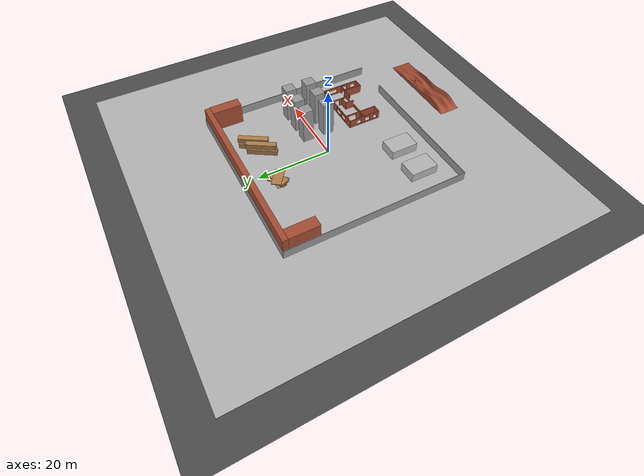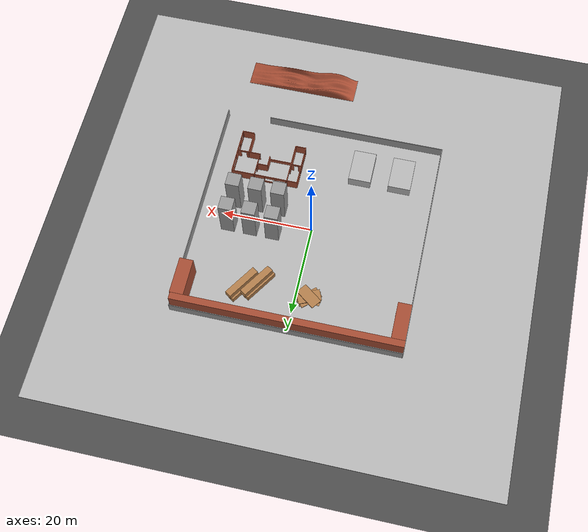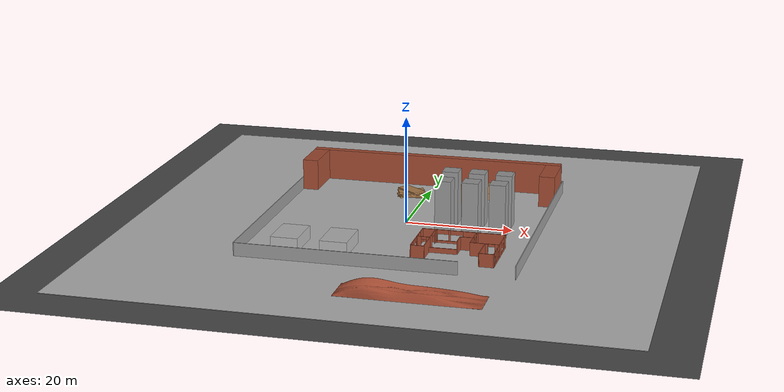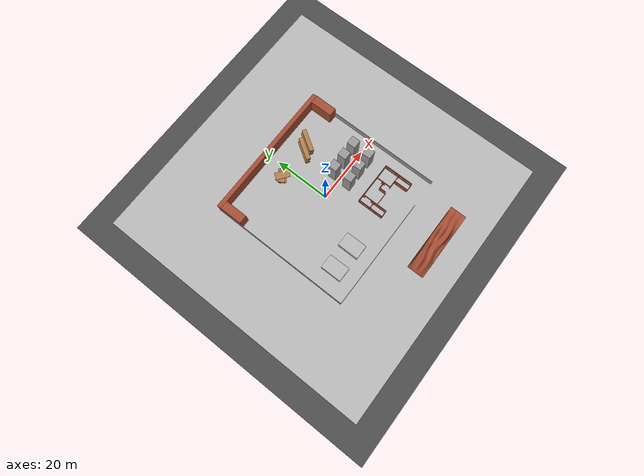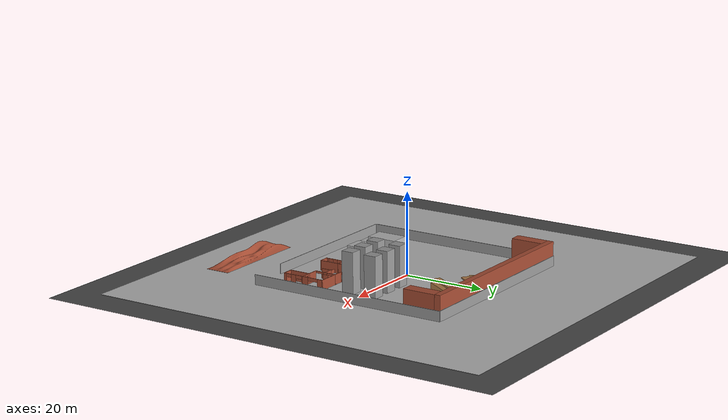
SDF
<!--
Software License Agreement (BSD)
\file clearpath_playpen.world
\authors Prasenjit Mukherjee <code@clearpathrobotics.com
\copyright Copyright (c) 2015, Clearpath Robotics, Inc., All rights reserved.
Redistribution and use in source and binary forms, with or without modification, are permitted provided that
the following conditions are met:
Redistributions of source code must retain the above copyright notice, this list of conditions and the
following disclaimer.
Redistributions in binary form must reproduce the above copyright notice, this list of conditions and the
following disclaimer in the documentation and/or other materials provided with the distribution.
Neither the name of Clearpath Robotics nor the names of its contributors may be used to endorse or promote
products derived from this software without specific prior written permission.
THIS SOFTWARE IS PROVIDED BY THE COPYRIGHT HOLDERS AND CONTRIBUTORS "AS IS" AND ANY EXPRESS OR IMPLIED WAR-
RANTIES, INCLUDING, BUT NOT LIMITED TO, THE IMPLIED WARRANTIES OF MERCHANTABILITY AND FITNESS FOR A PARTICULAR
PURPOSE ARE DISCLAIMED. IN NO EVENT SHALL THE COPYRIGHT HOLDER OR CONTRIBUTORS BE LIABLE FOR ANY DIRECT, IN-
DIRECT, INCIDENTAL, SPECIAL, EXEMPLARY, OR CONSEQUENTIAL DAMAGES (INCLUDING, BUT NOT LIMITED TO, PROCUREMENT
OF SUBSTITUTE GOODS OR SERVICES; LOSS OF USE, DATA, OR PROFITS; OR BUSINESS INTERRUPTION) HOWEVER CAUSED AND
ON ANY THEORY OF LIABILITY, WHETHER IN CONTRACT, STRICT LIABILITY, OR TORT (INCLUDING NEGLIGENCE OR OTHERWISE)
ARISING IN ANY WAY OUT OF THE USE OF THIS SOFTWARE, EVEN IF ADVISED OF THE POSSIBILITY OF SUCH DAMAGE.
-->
<sdf version="1.4">
 <world name="default">
  <light name="sun" type="directional">
   <pose>0 0 10 0 -0 0</pose>
   <diffuse>0.8 0.8 0.8 1</diffuse>
   <specular>0.2 0.2 0.2 1</specular>
   <attenuation>
    <range>1000</range>
    <constant>0.9</constant>
    <linear>0.01</linear>
    <quadratic>0.001</quadratic>
   </attenuation>
   <direction>-0.5 0.1 -0.9</direction>
  </light>
  <model name="ground_plane">
   <static>1</static>
   <link name="link">
    <collision name="collision">
     <geometry><plane><normal>0 0 1</normal><size>100 100</size></plane></geometry>
     <surface><friction><ode><mu>100</mu><mu2>50</mu2></ode></friction></surface>
    </collision>
    <visual name="visual">
     <cast_shadows>0</cast_shadows>
     <geometry><plane><normal>0 0 1</normal><size>100 100</size></plane></geometry>
     <material>
      <script>
       <uri>model://asphalt_plane/materials/scripts</uri>
       <uri>model://asphalt_plane/materials/textures</uri>
       <name>vrc/asphalt</name>
      </script>
     </material>
    </visual>
    <velocity_decay><linear>0</linear><angular>0</angular></velocity_decay>
   </link>
  </model>
  <physics type="ode">
   <max_step_size>0.01</max_step_size>
   <real_time_factor>1</real_time_factor>
   <real_time_update_rate>100</real_time_update_rate>
   <gravity>0 0 -9.8</gravity>
  </physics>
  <scene><ambient>0.4 0.4 0.4 1</ambient><background>0.7 0.7 0.7 1</background><shadows>1</shadows></scene>
  <model name="asphalt_plane">
   <static>1</static>
   <link name="link">
    <collision name="collision"><geometry><box><size>100 100 0.1</size></box></geometry></collision>
    <visual name="visual">
     <cast_shadows>0</cast_shadows>
     <geometry><box><size>100 100 0.1</size></box></geometry>
     <material>
      <script><uri>file://media/materials/scripts/gazebo.material</uri><name>Gazebo/Sand_Floor</name></script>
     </material>
    </visual>
    <velocity_decay><linear>0</linear><angular>0</angular></velocity_decay>
   </link>
   <pose>0.076733 -0.110379 0 0 -0 0</pose>
  </model>
  <model name="Wall_1">
   <include><static>true</static><uri>model://Wall_2</uri><pose>1.5 -30.5 0 0 0 0</pose></include>
  </model>
  <model name="Wall_2">
   <include><static>true</static><uri>model://Wall</uri><pose>6.5 19.5 0 0 0 0</pose></include>
  </model>
  <model name="Wall_3">
   <include><static>true</static><uri>model://Wall</uri><pose>30.5 6 0 0 0 1.57</pose></include>
  </model>
  <model name="Wall_4">
   <include><static>true</static><uri>model://Wall</uri><pose>-19.5 6 0 0 0 1.57</pose></include>
  </model>
  <model name="inside_house">
   <include><static>true</static><uri>model://construction_house</uri><pose>13 -15 0 0 0 0</pose></include>
  </model>
  <model name="Wood_1">
   <include><static>true</static><uri>model://Wood</uri><pose>-3 16 0 1.57 0 0</pose></include>
  </model>
  <model name="Wood_2">
   <include><static>true</static><uri>model://Wood</uri><pose>-3 16 0.25 1.57 0 0.5</pose></include>
  </model>
  <model name="Wood_3">
   <include><static>true</static><uri>model://Wood</uri><pose>-3 16 0.5 1.57 0 0.75</pose></include>
  </model>
  <model name="Wood_4">
   <include><static>true</static><uri>model://Wood</uri><pose>-3 16 0.75 1.57 0 0.2</pose></include>
  </model>
  <model name="Wood_5">
   <include><static>true</static><uri>model://Wood</uri><pose>-3 16 1 1.57 0 0.4</pose></include>
  </model>
  <model name="Wood_6">
   <include><static>true</static><uri>model://Wood</uri><pose>-3 16 1.25 1.57 0 2.5</pose></include>
  </model>
  <model name="Stone_1">
   <include><static>true</static><uri>model://Stone</uri><pose>-17 -17 1.277294 0 0 0</pose></include>
  </model>
  <model name="Stone_2">
   <include><static>true</static><uri>model://Stone</uri><pose>-8 -17 1.277294 0 0 0</pose></include>
  </model>
  <model name="long_wood_1">
   <include><static>true</static><uri>model://long_wood</uri><pose>8 15.5 0.75 0 0 1</pose></include>
  </model>
  <model name="long_wood_2">
   <include><static>true</static><uri>model://long_wood</uri><pose>11 16.5 0.75 0 0 1</pose></include>
  </model>
  <model name="long_wood_4">
   <include><static>true</static><uri>model://long_wood</uri><pose>8.5 15.5 2.25 0 0 1</pose></include>
  </model>
  <model name="long_wood_5">
   <include><static>true</static><uri>model://long_wood</uri><pose>11.5 16.5 2.25 0 0 1</pose></include>
  </model>
  <model name="storage_wall">
   <include><static>true</static><uri>model://storage_wall</uri><pose>0.12 23.95 3 0 0 0</pose></include>
  </model>
  <model name="storage_wall_2">
   <include><static>true</static><uri>model://storage_wall_2</uri><pose>-23.2049 19.2 3 0 0 1.57</pose></include>
  </model>
  <model name="storage_wall_3">
   <include><static>true</static><uri>model://storage_wall_2</uri><pose>23.6455 19.2 3 0 0 1.57</pose></include>
  </model>
  <model name="pillar_1">
   <include><static>true</static><uri>model://pillar</uri><pose>8 2.5 5 0 0 0</pose></include>
  </model>
  <model name="pillar_2">
   <include><static>true</static><uri>model://pillar</uri><pose>13 2.5 5 0 0 0</pose></include>
  </model>
  <model name="pillar_3">
   <include><static>true</static><uri>model://pillar</uri><pose>18 2.5 5 0 0 0</pose></include>
  </model>
  <model name="pillar_4">
   <include><static>true</static><uri>model://pillar</uri><pose>8 -3.5 5 0 0 0</pose></include>
  </model>
  <model name="pillar_5">
   <include><static>true</static><uri>model://pillar</uri><pose>13 -3.5 5 0 0 0</pose></include>
  </model>
  <model name="pillar_6">
   <include><static>true</static><uri>model://pillar</uri><pose>18 -3.5 5 0 0 0</pose></include>
  </model>
  <model name="test_01">
   <include><static>true</static><uri>model://test</uri><pose>22.7 -35 0.5 0 0 0</pose></include>
  </model>
 </world>
</sdf>

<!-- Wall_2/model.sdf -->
<sdf version='1.6'>
  <model name='Wall_2'>
<link name='Wall_84'>
      <pose frame=''>-6.2 5.275 0 0 -0 3.14159</pose>
      <self_collide>0</self_collide>
      <kinematic>0</kinematic>
      <visual name='Wall_84_Visual'>
        <pose frame=''>0 0 1.25 0 -0 0</pose>
        <geometry>
          <box>
            <size>40 0.15 2.5</size>
          </box>
        </geometry>
        <material>
          <script>
              <uri>model://grey_wall/materials/scripts</uri>
            <uri>model://grey_wall/materials/textures</uri>
            <name>vrc/grey_wall</name>
          </script>
          <ambient>1 1 1 1</ambient>
          <diffuse>1 1 1 1</diffuse>
          <specular>0.2 0.2 0.2 1</specular>
          <emissive>0 0 0 1</emissive>
        </material>
        <cast_shadows>1</cast_shadows>
        <transparency>0</transparency>
      </visual>
      <collision name='Wall_84_Collision'>
        <laser_retro>0</laser_retro>
        <max_contacts>10</max_contacts>
        <pose frame=''>0 0 1.25 0 -0 0</pose>
        <geometry>
          <box>
            <size>40 0.15 2.5</size>
          </box>
        </geometry>
        <surface>
          <friction>
            <ode>
              <mu>1</mu>
              <mu2>1</mu2>
              <fdir1>0 0 0</fdir1>
              <slip1>0</slip1>
              <slip2>0</slip2>
            </ode>
            <torsional>
              <coefficient>1</coefficient>
              <patch_radius>0</patch_radius>
              <surface_radius>0</surface_radius>
              <use_patch_radius>1</use_patch_radius>
              <ode>
                <slip>0</slip>
              </ode>
            </torsional>
          </friction>
          <bounce>
            <restitution_coefficient>0</restitution_coefficient>
            <threshold>1e+06</threshold>
          </bounce>
          <contact>
            <collide_without_contact>0</collide_without_contact>
            <collide_without_contact_bitmask>1</collide_without_contact_bitmask>
            <collide_bitmask>1</collide_bitmask>
            <ode>
              <soft_cfm>0</soft_cfm>
              <soft_erp>0.2</soft_erp>
              <kp>1e+13</kp>
              <kd>1</kd>
              <max_vel>0.01</max_vel>
              <min_depth>0</min_depth>
            </ode>
            <bullet>
              <split_impulse>1</split_impulse>
              <split_impulse_penetration_threshold>-0.01</split_impulse_penetration_threshold>
              <soft_cfm>0</soft_cfm>
              <soft_erp>0.2</soft_erp>
              <kp>1e+13</kp>
              <kd>1</kd>
            </bullet>
          </contact>
        </surface>
      </collision>
    </link>
</model>
</sdf>

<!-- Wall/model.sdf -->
<sdf version='1.6'>
  <model name='Wall'>
<link name='Wall_84'>
      <pose frame=''>-6.2 5.275 0 0 -0 3.14159</pose>
      <self_collide>0</self_collide>
      <kinematic>0</kinematic>
      <visual name='Wall_84_Visual'>
        <pose frame=''>0 0 1.25 0 -0 0</pose>
        <geometry>
          <box>
            <size>50 0.15 2.5</size>
          </box>
        </geometry>
        <material>
          <script>
              <uri>model://grey_wall/materials/scripts</uri>
            <uri>model://grey_wall/materials/textures</uri>
            <name>vrc/grey_wall</name>
          </script>
          <ambient>1 1 1 1</ambient>
          <diffuse>1 1 1 1</diffuse>
          <specular>0.2 0.2 0.2 1</specular>
          <emissive>0 0 0 1</emissive>
        </material>
        <cast_shadows>1</cast_shadows>
        <transparency>0</transparency>
      </visual>
      <collision name='Wall_84_Collision'>
        <laser_retro>0</laser_retro>
        <max_contacts>10</max_contacts>
        <pose frame=''>0 0 1.25 0 -0 0</pose>
        <geometry>
          <box>
            <size>50 0.15 2.5</size>
          </box>
        </geometry>
        <surface>
          <friction>
            <ode>
              <mu>1</mu>
              <mu2>1</mu2>
              <fdir1>0 0 0</fdir1>
              <slip1>0</slip1>
              <slip2>0</slip2>
            </ode>
            <torsional>
              <coefficient>1</coefficient>
              <patch_radius>0</patch_radius>
              <surface_radius>0</surface_radius>
              <use_patch_radius>1</use_patch_radius>
              <ode>
                <slip>0</slip>
              </ode>
            </torsional>
          </friction>
          <bounce>
            <restitution_coefficient>0</restitution_coefficient>
            <threshold>1e+06</threshold>
          </bounce>
          <contact>
            <collide_without_contact>0</collide_without_contact>
            <collide_without_contact_bitmask>1</collide_without_contact_bitmask>
            <collide_bitmask>1</collide_bitmask>
            <ode>
              <soft_cfm>0</soft_cfm>
              <soft_erp>0.2</soft_erp>
              <kp>1e+13</kp>
              <kd>1</kd>
              <max_vel>0.01</max_vel>
              <min_depth>0</min_depth>
            </ode>
            <bullet>
              <split_impulse>1</split_impulse>
              <split_impulse_penetration_threshold>-0.01</split_impulse_penetration_threshold>
              <soft_cfm>0</soft_cfm>
              <soft_erp>0.2</soft_erp>
              <kp>1e+13</kp>
              <kd>1</kd>
            </bullet>
          </contact>
        </surface>
      </collision>
    </link>
</model>
</sdf>

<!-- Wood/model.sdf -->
<sdf version='1.6'>
  <model name='Wood'>
<link name='Wall_84'>
      <self_collide>0</self_collide>
      <kinematic>0</kinematic>
      <visual name='Wall_84_Visual'>
        <geometry>
          <box>
            <size>5 0.25 2.5</size>
          </box>
        </geometry>
        <material>
          <script>

            <uri>file://media/materials/scripts/gazebo.material</uri>
            <name>Gazebo/Wood</name>

          </script>
          <ambient>1 1 1 1</ambient>
          <diffuse>1 1 1 1</diffuse>
          <specular>0.2 0.2 0.2 1</specular>
          <emissive>0 0 0 1</emissive>
        </material>
        <cast_shadows>1</cast_shadows>
        <transparency>0</transparency>
      </visual>
      <collision name='Wall_84_Collision'>
        <laser_retro>0</laser_retro>
        <max_contacts>10</max_contacts>
        <geometry>
          <box>
            <size>5 0.25 2.5</size>
          </box>
        </geometry>
        <surface>
          <friction>
            <ode>
              <mu>1</mu>
              <mu2>1</mu2>
              <fdir1>0 0 0</fdir1>
              <slip1>0</slip1>
              <slip2>0</slip2>
            </ode>
            <torsional>
              <coefficient>1</coefficient>
              <patch_radius>0</patch_radius>
              <surface_radius>0</surface_radius>
              <use_patch_radius>1</use_patch_radius>
              <ode>
                <slip>0</slip>
              </ode>
            </torsional>
          </friction>
          <bounce>
            <restitution_coefficient>0</restitution_coefficient>
            <threshold>1e+06</threshold>
          </bounce>
          <contact>
            <collide_without_contact>0</collide_without_contact>
            <collide_without_contact_bitmask>1</collide_without_contact_bitmask>
            <collide_bitmask>1</collide_bitmask>
            <ode>
              <soft_cfm>0</soft_cfm>
              <soft_erp>0.2</soft_erp>
              <kp>1e+13</kp>
              <kd>1</kd>
              <max_vel>0.01</max_vel>
              <min_depth>0</min_depth>
            </ode>
            <bullet>
              <split_impulse>1</split_impulse>
              <split_impulse_penetration_threshold>-0.01</split_impulse_penetration_threshold>
              <soft_cfm>0</soft_cfm>
              <soft_erp>0.2</soft_erp>
              <kp>1e+13</kp>
              <kd>1</kd>
            </bullet>
          </contact>
        </surface>
      </collision>
    </link>
</model>
</sdf>

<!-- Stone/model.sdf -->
<sdf version='1.6'>
  <model name='Stone'>
<link name='Wall_84'>
      <self_collide>0</self_collide>
      <kinematic>0</kinematic>
      <visual name='Wall_84_Visual'>
        <geometry>
          <box>
            <size>5 7.5 2.5</size>
          </box>
        </geometry>
        <material>
          <script>
              <uri>file://media/materials/scripts/gazebo.material</uri>
              <name>Gazebo/Sand_Floor</name>
          </script>

        </material>
        <cast_shadows>1</cast_shadows>
        <transparency>0</transparency>
      </visual>
      <collision name='Wall_84_Collision'>
        <laser_retro>0</laser_retro>
        <max_contacts>10</max_contacts>
        <geometry>
          <box>
            <size>5 7.5 2.5</size>
          </box>
        </geometry>
        <surface>
          <friction>
            <ode>
              <mu>1</mu>
              <mu2>1</mu2>
              <fdir1>0 0 0</fdir1>
              <slip1>0</slip1>
              <slip2>0</slip2>
            </ode>
            <torsional>
              <coefficient>1</coefficient>
              <patch_radius>0</patch_radius>
              <surface_radius>0</surface_radius>
              <use_patch_radius>1</use_patch_radius>
              <ode>
                <slip>0</slip>
              </ode>
            </torsional>
          </friction>
          <bounce>
            <restitution_coefficient>0</restitution_coefficient>
            <threshold>1e+06</threshold>
          </bounce>
          <contact>
            <collide_without_contact>0</collide_without_contact>
            <collide_without_contact_bitmask>1</collide_without_contact_bitmask>
            <collide_bitmask>1</collide_bitmask>
            <ode>
              <soft_cfm>0</soft_cfm>
              <soft_erp>0.2</soft_erp>
              <kp>1e+13</kp>
              <kd>1</kd>
              <max_vel>0.01</max_vel>
              <min_depth>0</min_depth>
            </ode>
            <bullet>
              <split_impulse>1</split_impulse>
              <split_impulse_penetration_threshold>-0.01</split_impulse_penetration_threshold>
              <soft_cfm>0</soft_cfm>
              <soft_erp>0.2</soft_erp>
              <kp>1e+13</kp>
              <kd>1</kd>
            </bullet>
          </contact>
        </surface>
      </collision>
    </link>
</model>
</sdf>

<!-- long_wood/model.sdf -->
<sdf version='1.6'>
  <model name='long_wood'>
<link name='Wall_84'>
      <self_collide>0</self_collide>
      <kinematic>0</kinematic>
      <visual name='Wall_84_Visual'>
        <geometry>
          <box>
            <size>8 1.5 1.5</size>
          </box>
        </geometry>
        <material>
          <script>
            <uri>file://media/materials/scripts/gazebo.material</uri>
            <name>Gazebo/Wood</name>
          </script>
          <ambient>1 1 1 1</ambient>
          <diffuse>1 1 1 1</diffuse>
          <specular>0.2 0.2 0.2 1</specular>
          <emissive>0 0 0 1</emissive>
        </material>
        <cast_shadows>1</cast_shadows>
        <transparency>0</transparency>
      </visual>
      <collision name='Wall_84_Collision'>
        <laser_retro>0</laser_retro>
        <max_contacts>10</max_contacts>
        <geometry>
          <box>
            <size>8 1.5 1.5</size>
          </box>
        </geometry>
        <surface>
          <friction>
            <ode>
              <mu>1</mu>
              <mu2>1</mu2>
              <fdir1>0 0 0</fdir1>
              <slip1>0</slip1>
              <slip2>0</slip2>
            </ode>
            <torsional>
              <coefficient>1</coefficient>
              <patch_radius>0</patch_radius>
              <surface_radius>0</surface_radius>
              <use_patch_radius>1</use_patch_radius>
              <ode>
                <slip>0</slip>
              </ode>
            </torsional>
          </friction>
          <bounce>
            <restitution_coefficient>0</restitution_coefficient>
            <threshold>1e+06</threshold>
          </bounce>
          <contact>
            <collide_without_contact>0</collide_without_contact>
            <collide_without_contact_bitmask>1</collide_without_contact_bitmask>
            <collide_bitmask>1</collide_bitmask>
            <ode>
              <soft_cfm>0</soft_cfm>
              <soft_erp>0.2</soft_erp>
              <kp>1e+13</kp>
              <kd>1</kd>
              <max_vel>0.01</max_vel>
              <min_depth>0</min_depth>
            </ode>
            <bullet>
              <split_impulse>1</split_impulse>
              <split_impulse_penetration_threshold>-0.01</split_impulse_penetration_threshold>
              <soft_cfm>0</soft_cfm>
              <soft_erp>0.2</soft_erp>
              <kp>1e+13</kp>
              <kd>1</kd>
            </bullet>
          </contact>
        </surface>
      </collision>
    </link>
</model>
</sdf>

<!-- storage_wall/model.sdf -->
<sdf version='1.6'>
  <model name='storage_wall'>
<link name='Wall_84'>
      <self_collide>0</self_collide>
      <kinematic>0</kinematic>
      <visual name='Wall_84_Visual'>
        <geometry>
          <box>
            <size>49.7 1.5 6</size>
          </box>
        </geometry>
        <material>
          <script>
            <uri>file://media/materials/scripts/gazebo.material</uri>
            <name>Gazebo/Bricks</name>
          </script>
          <ambient>1 1 1 1</ambient>
          <diffuse>1 1 1 1</diffuse>
          <specular>0.2 0.2 0.2 1</specular>
          <emissive>0 0 0 1</emissive>
        </material>
        <cast_shadows>1</cast_shadows>
        <transparency>0</transparency>
      </visual>
      <collision name='Wall_84_Collision'>
        <laser_retro>0</laser_retro>
        <max_contacts>10</max_contacts>
        <geometry>
          <box>
            <size>49.7 1.5 6</size>
          </box>
        </geometry>
        <surface>
          <friction>
            <ode>
              <mu>1</mu>
              <mu2>1</mu2>
              <fdir1>0 0 0</fdir1>
              <slip1>0</slip1>
              <slip2>0</slip2>
            </ode>
            <torsional>
              <coefficient>1</coefficient>
              <patch_radius>0</patch_radius>
              <surface_radius>0</surface_radius>
              <use_patch_radius>1</use_patch_radius>
              <ode>
                <slip>0</slip>
              </ode>
            </torsional>
          </friction>
          <bounce>
            <restitution_coefficient>0</restitution_coefficient>
            <threshold>1e+06</threshold>
          </bounce>
          <contact>
            <collide_without_contact>0</collide_without_contact>
            <collide_without_contact_bitmask>1</collide_without_contact_bitmask>
            <collide_bitmask>1</collide_bitmask>
            <ode>
              <soft_cfm>0</soft_cfm>
              <soft_erp>0.2</soft_erp>
              <kp>1e+13</kp>
              <kd>1</kd>
              <max_vel>0.01</max_vel>
              <min_depth>0</min_depth>
            </ode>
            <bullet>
              <split_impulse>1</split_impulse>
              <split_impulse_penetration_threshold>-0.01</split_impulse_penetration_threshold>
              <soft_cfm>0</soft_cfm>
              <soft_erp>0.2</soft_erp>
              <kp>1e+13</kp>
              <kd>1</kd>
            </bullet>
          </contact>
        </surface>
      </collision>
    </link>
</model>
</sdf>

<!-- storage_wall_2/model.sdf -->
<sdf version='1.6'>
  <model name='storage_wall_2'>
<link name='Wall_84'>
      <self_collide>0</self_collide>
      <kinematic>0</kinematic>
      <visual name='Wall_84_Visual'>
        <geometry>
          <box>
            <size>8 3 6</size>
          </box>
        </geometry>
        <material>
          <script>
            <uri>file://media/materials/scripts/gazebo.material</uri>
            <name>Gazebo/Bricks</name>
          </script>
          <ambient>1 1 1 1</ambient>
          <diffuse>1 1 1 1</diffuse>
          <specular>0.2 0.2 0.2 1</specular>
          <emissive>0 0 0 1</emissive>
        </material>
        <cast_shadows>1</cast_shadows>
        <transparency>0</transparency>
      </visual>
      <collision name='Wall_84_Collision'>
        <laser_retro>0</laser_retro>
        <max_contacts>10</max_contacts>
        <geometry>
          <box>
            <size>8 3 6</size>
          </box>
        </geometry>
        <surface>
          <friction>
            <ode>
              <mu>1</mu>
              <mu2>1</mu2>
              <fdir1>0 0 0</fdir1>
              <slip1>0</slip1>
              <slip2>0</slip2>
            </ode>
            <torsional>
              <coefficient>1</coefficient>
              <patch_radius>0</patch_radius>
              <surface_radius>0</surface_radius>
              <use_patch_radius>1</use_patch_radius>
              <ode>
                <slip>0</slip>
              </ode>
            </torsional>
          </friction>
          <bounce>
            <restitution_coefficient>0</restitution_coefficient>
            <threshold>1e+06</threshold>
          </bounce>
          <contact>
            <collide_without_contact>0</collide_without_contact>
            <collide_without_contact_bitmask>1</collide_without_contact_bitmask>
            <collide_bitmask>1</collide_bitmask>
            <ode>
              <soft_cfm>0</soft_cfm>
              <soft_erp>0.2</soft_erp>
              <kp>1e+13</kp>
              <kd>1</kd>
              <max_vel>0.01</max_vel>
              <min_depth>0</min_depth>
            </ode>
            <bullet>
              <split_impulse>1</split_impulse>
              <split_impulse_penetration_threshold>-0.01</split_impulse_penetration_threshold>
              <soft_cfm>0</soft_cfm>
              <soft_erp>0.2</soft_erp>
              <kp>1e+13</kp>
              <kd>1</kd>
            </bullet>
          </contact>
        </surface>
      </collision>
    </link>
</model>
</sdf>

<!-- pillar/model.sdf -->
<sdf version='1.6'>
  <model name='pillar'>
<link name='Wall_84'>
      <self_collide>0</self_collide>
      <kinematic>0</kinematic>
      <visual name='Wall_84_Visual'>
        <geometry>
          <box>
            <size>3 3 10</size>
          </box>
        </geometry>
        <material>
          <script>
            <uri>file://media/materials/scripts/gazebo.material</uri>
            <name>Gazebo/Grey</name>
          </script>
          <ambient>1 1 1 1</ambient>
          <diffuse>1 1 1 1</diffuse>
          <specular>0.2 0.2 0.2 1</specular>
          <emissive>0 0 0 1</emissive>
        </material>
        <cast_shadows>1</cast_shadows>
        <transparency>0</transparency>
      </visual>
      <collision name='Wall_84_Collision'>
        <laser_retro>0</laser_retro>
        <max_contacts>10</max_contacts>
        <geometry>
          <box>
            <size>3 3 10</size>
          </box>
        </geometry>
        <surface>
          <friction>
            <ode>
              <mu>1</mu>
              <mu2>1</mu2>
              <fdir1>0 0 0</fdir1>
              <slip1>0</slip1>
              <slip2>0</slip2>
            </ode>
            <torsional>
              <coefficient>1</coefficient>
              <patch_radius>0</patch_radius>
              <surface_radius>0</surface_radius>
              <use_patch_radius>1</use_patch_radius>
              <ode>
                <slip>0</slip>
              </ode>
            </torsional>
          </friction>
          <bounce>
            <restitution_coefficient>0</restitution_coefficient>
            <threshold>1e+06</threshold>
          </bounce>
          <contact>
            <collide_without_contact>0</collide_without_contact>
            <collide_without_contact_bitmask>1</collide_without_contact_bitmask>
            <collide_bitmask>1</collide_bitmask>
            <ode>
              <soft_cfm>0</soft_cfm>
              <soft_erp>0.2</soft_erp>
              <kp>1e+13</kp>
              <kd>1</kd>
              <max_vel>0.01</max_vel>
              <min_depth>0</min_depth>
            </ode>
            <bullet>
              <split_impulse>1</split_impulse>
              <split_impulse_penetration_threshold>-0.01</split_impulse_penetration_threshold>
              <soft_cfm>0</soft_cfm>
              <soft_erp>0.2</soft_erp>
              <kp>1e+13</kp>
              <kd>1</kd>
            </bullet>
          </contact>
        </surface>
      </collision>
    </link>
</model>
</sdf>

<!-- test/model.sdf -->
<sdf version='1.6'>
  <model name='test'>
<link name='link'>
      <self_collide>0</self_collide>
      <kinematic>0</kinematic>
      <visual name='link'>
        <geometry>
<mesh>
<uri>model://test/meshes/base_link.STL </uri>
<scale>50 50 50</scale>

</mesh>

        </geometry>
        <material>
          <script>

            <uri>file://media/materials/scripts/gazebo.material</uri>
            <name>Gazebo/Bricks</name>

          </script>
          <ambient>1 1 1 1</ambient>
          <diffuse>1 1 1 1</diffuse>
          <specular>0.2 0.2 0.2 1</specular>
          <emissive>0 0 0 1</emissive>
        </material>
        <cast_shadows>1</cast_shadows>
        <transparency>0</transparency>
      </visual>
      <collision name='Wall_84_Collision'>
        <laser_retro>0</laser_retro>
        <max_contacts>10</max_contacts>
        <geometry>

<mesh>
<uri>model://test/meshes/base_link.STL </uri>
<scale>50 50 50</scale>
</mesh>

        </geometry>
        <surface>
          <friction>
            <ode>
              <mu>1</mu>
              <mu2>1</mu2>
              <fdir1>0 0 0</fdir1>
              <slip1>0</slip1>
              <slip2>0</slip2>
            </ode>
            <torsional>
              <coefficient>1</coefficient>
              <patch_radius>0</patch_radius>
              <surface_radius>0</surface_radius>
              <use_patch_radius>1</use_patch_radius>
              <ode>
                <slip>0</slip>
              </ode>
            </torsional>
          </friction>
          <bounce>
            <restitution_coefficient>0</restitution_coefficient>
            <threshold>1e+06</threshold>
          </bounce>
          <contact>
            <collide_without_contact>0</collide_without_contact>
            <collide_without_contact_bitmask>1</collide_without_contact_bitmask>
            <collide_bitmask>1</collide_bitmask>
            <ode>
              <soft_cfm>0</soft_cfm>
              <soft_erp>0.2</soft_erp>
              <kp>1e+13</kp>
              <kd>1</kd>
              <max_vel>0.01</max_vel>
              <min_depth>0</min_depth>
            </ode>
            <bullet>
              <split_impulse>1</split_impulse>
              <split_impulse_penetration_threshold>-0.01</split_impulse_penetration_threshold>
              <soft_cfm>0</soft_cfm>
              <soft_erp>0.2</soft_erp>
              <kp>1e+13</kp>
              <kd>1</kd>
            </bullet>
          </contact>
        </surface>
      </collision>
    </link>
</model>
</sdf>
